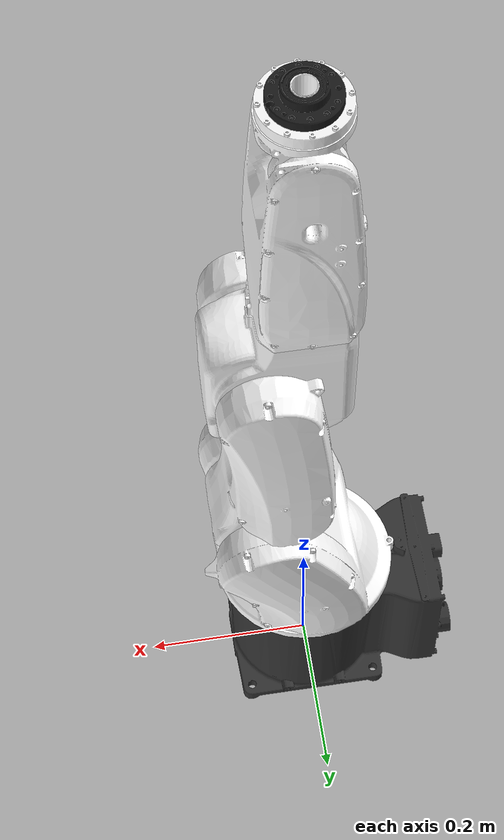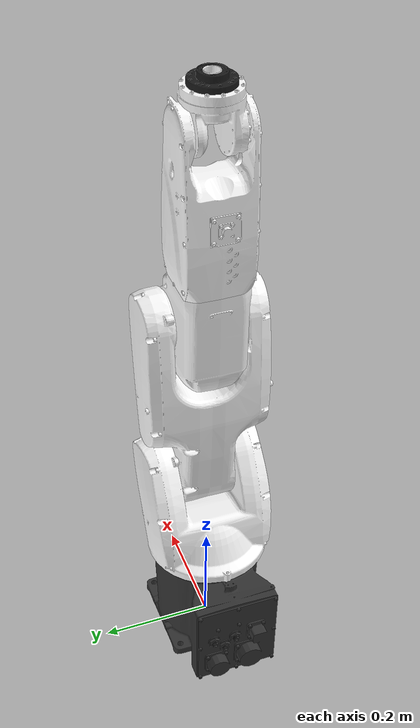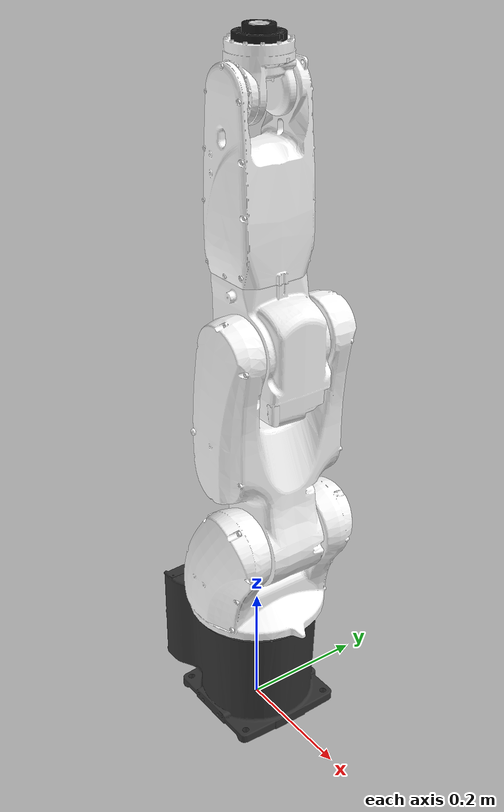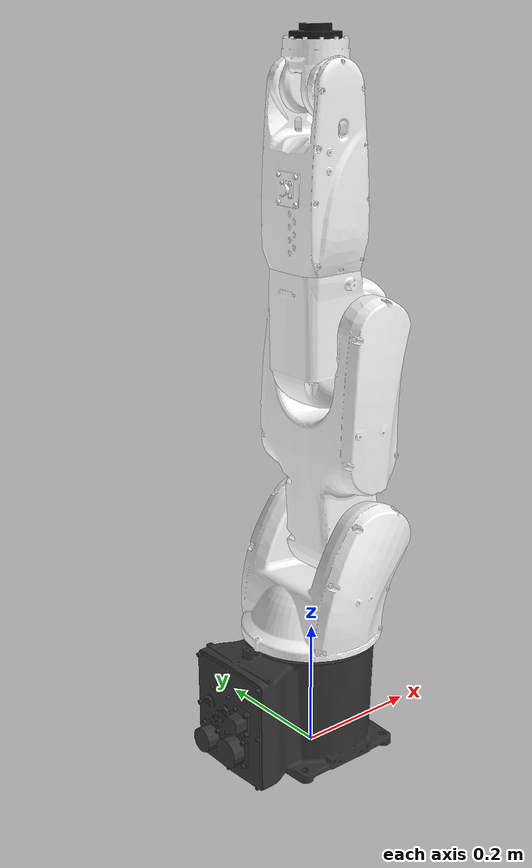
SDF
<?xml version="1.0" ?>
<sdf version='1.6'>
  <world name='default'>
  <model name='mz07'>
    <link name='mz07_link_0'>
      <pose frame=''>0 0 0 0 0 0</pose>
      <inertial>
        <pose frame=''>-0.1 0 0.07 0 -0 0</pose>
        <mass>0</mass>
        <inertia>
          <ixx>0.05</ixx>
          <ixy>0</ixy>
          <ixz>0</ixz>
          <iyy>0.06</iyy>
          <iyz>0</iyz>
          <izz>0.03</izz>
        </inertia>
      </inertial>
      <collision name='mz07_link_0_collision'>
        <pose frame=''>0 0 0 0 0 0</pose>
        <geometry>
          <mesh>
            <scale>1 1 1</scale>
            <uri>stls/mz07/mz07_base.stl</uri>
          </mesh>
        </geometry>
      </collision>
      <visual name='mz07_link_0_visual'>
        <pose frame=''>0 0 0 0 0 0</pose>
        <geometry>
          <mesh>
            <scale>1 1 1</scale>
            <uri>stls/mz07/mz07_base.stl</uri>
          </mesh>
        </geometry>
        <material>
          <ambient>1 0 0 1</ambient>
          <diffuse>0.2 0.2 0.2 1.0</diffuse>
          <specular>0.4 0.4 0.4 1</specular>
          <emissive>0 0 0 0</emissive>
        </material>
      </visual>
    </link>
    <link name='mz07_link_1'>
      <pose frame=''>0 0 0.197 0 0 0</pose>
      <inertial>
        <pose frame=''>0 -0.03 0.12 0 -0 0</pose>
        <mass>4</mass>
        <inertia>
          <ixx>0.1</ixx>
          <ixy>0</ixy>
          <ixz>0</ixz>
          <iyy>0.09</iyy>
          <iyz>0</iyz>
          <izz>0.02</izz>
        </inertia>
      </inertial>
      <collision name='mz07_link_1_collision'>
        <pose frame=''>0 0 0 0 0 0</pose>
        <geometry>
          <mesh>
            <scale>1 1 1</scale>
            <uri>stls/mz07/mz07_link1.stl</uri>
          </mesh>
        </geometry>
      </collision>
      <visual name='mz07_link_1_visual'>
        <pose frame=''>0 0 0 0 0 0</pose>
        <geometry>
          <mesh>
            <scale>1 1 1</scale>
            <uri>stls/mz07/mz07_link1.stl</uri>
          </mesh>
        </geometry>
        <material>
          <ambient>1 0 0 1</ambient>
          <diffuse>1.0 1.0 1.0 1.0</diffuse>
          <specular>0.5 0.5 0.5 1</specular>
          <emissive>0 0 0 0</emissive>
        </material>
      </visual>
    </link>
    <joint name='J0' type='revolute'>
      <child>mz07_link_1</child>
      <parent>mz07_link_0</parent>
      <axis>
        <xyz>0 0 1</xyz>
        <limit>
          <lower>-2.96705981</lower>
          <upper>2.96705981</upper>
          <effort>300</effort>
          <velocity>10</velocity>
        </limit>
        <dynamics>
          <damping>0.5</damping>
          <friction>0</friction>
          <spring_reference>0</spring_reference>
          <spring_stiffness>0</spring_stiffness>
        </dynamics>
      </axis>
    </joint>
    <link name='mz07_link_2'>
      <pose frame=''>0.05 0 0.345 0 0 0</pose>
      <inertial>
        <pose frame=''>0.0003 0.059 0.042 0 -0 0</pose>
        <mass>4</mass>
        <inertia>
          <ixx>0.05</ixx>
          <ixy>0</ixy>
          <ixz>0</ixz>
          <iyy>0.018</iyy>
          <iyz>0</iyz>
          <izz>0.044</izz>
        </inertia>
      </inertial>
      <collision name='mz07_link_2_collision'>
        <pose frame=''>0 0 0 0 0 0</pose>
        <geometry>
          <mesh>
            <scale>1 1 1</scale>
            <uri>stls/mz07/mz07_link2.stl</uri>
          </mesh>
        </geometry>
      </collision>
      <visual name='mz07_link_2_visual'>
        <pose frame=''>0 0 0 0 0 0</pose>
        <geometry>
          <mesh>
            <scale>1 1 1</scale>
            <uri>stls/mz07/mz07_link2.stl</uri>
          </mesh>
        </geometry>
        <material>
          <ambient>1 0 0 1</ambient>
          <diffuse>1.0 1.0 1.0 1.0</diffuse>
          <specular>0.5 0.5 0.5 1</specular>
          <emissive>0 0 0 0</emissive>
        </material>
      </visual>
    </link>
    <joint name='J1' type='revolute'>
      <child>mz07_link_2</child>
      <parent>mz07_link_1</parent>
      <axis>
        <xyz>0 1 0</xyz>
        <limit>
          <lower>-1.39626344</lower>
          <upper>2.356194555</upper>
          <effort>300</effort>
          <velocity>10</velocity>
        </limit>
        <dynamics>
          <damping>0.5</damping>
          <friction>0</friction>
          <spring_reference>0</spring_reference>
          <spring_stiffness>0</spring_stiffness>
        </dynamics>
      </axis>
    </joint>
    <link name='mz07_link_3'>
      <pose frame=''>0.05 0 0.675 0 0 0</pose>
      <inertial>
        <pose frame=''>0 0.03 0.13 0 -0 0</pose>
        <mass>3</mass>
        <inertia>
          <ixx>0.08</ixx>
          <ixy>0</ixy>
          <ixz>0</ixz>
          <iyy>0.075</iyy>
          <iyz>0</iyz>
          <izz>0.01</izz>
        </inertia>
      </inertial>
      <collision name='mz07_link_3_collision'>
        <pose frame=''>0 0 0 0 -1.57 0</pose>
        <geometry>
          <mesh>
            <scale>1 1 1</scale>
            <uri>stls/mz07/mz07_link3.stl</uri>
          </mesh>
        </geometry>
      </collision>
      <visual name='mz07_link_3_visual'>
        <pose frame=''>0 0 0 0 -1.57 0</pose>
        <geometry>
          <mesh>
            <scale>1 1 1</scale>
            <uri>stls/mz07/mz07_link3.stl</uri>
          </mesh>
        </geometry>
        <material>
          <ambient>1 0 0 1</ambient>
          <diffuse>1.0 1.0 1.0 1.0</diffuse>
          <specular>0.5 0.5 0.5 1</specular>
          <emissive>0 0 0 0</emissive>
        </material>
      </visual>
    </link>
    <joint name='J2' type='revolute'>
      <child>mz07_link_3</child>
      <parent>mz07_link_2</parent>
      <axis>
        <xyz>0 1 0</xyz>
        <limit>
          <lower>-1.57159274</lower>
          <upper>2.372851478</upper>
          <effort>300</effort>
          <velocity>10</velocity>
        </limit>
        <dynamics>
          <damping>0.5</damping>
          <friction>0</friction>
          <spring_reference>0</spring_reference>
          <spring_stiffness>0</spring_stiffness>
        </dynamics>
      </axis>
    </joint>
    <link name='mz07_link_4'>
      <pose frame=''>0.005 0 0.765 0 0 0</pose>
      <inertial>
        <pose frame=''>0 0.067 0.034 0 -0 0</pose>
        <mass>2.7</mass>
        <inertia>
          <ixx>0.03</ixx>
          <ixy>0</ixy>
          <ixz>0</ixz>
          <iyy>0.01</iyy>
          <iyz>0</iyz>
          <izz>0.029</izz>
        </inertia>
      </inertial>
      <collision name='mz07_link_4_collision'>
        <pose frame=''>0 0 0 0 -1.57 0</pose>
        <geometry>
          <mesh>
            <scale>1 1 1</scale>
            <uri>stls/mz07/mz07_link4.stl</uri>
          </mesh>
        </geometry>
      </collision>
      <visual name='mz07_link_4_visual'>
        <pose frame=''>0 0 0 0 -1.57 0</pose>
        <geometry>
          <mesh>
            <scale>1 1 1</scale>
            <uri>stls/mz07/mz07_link4.stl</uri>
          </mesh>
        </geometry>
        <material>
          <ambient>1 0 0 1</ambient>
          <diffuse>1.0 1.0 1.0 1.0</diffuse>
          <specular>0.5 0.5 0.5 1</specular>
          <emissive>0 0 0 0</emissive>
        </material>
      </visual>
    </link>
    <joint name='J3' type='revolute'>
      <child>mz07_link_4</child>
      <parent>mz07_link_3</parent>
      <axis>
        <xyz>0 0 1</xyz>
        <limit>
          <lower>-3.31612567</lower>
          <upper>3.31612567</upper>
          <effort>300</effort>
          <velocity>10</velocity>
        </limit>
        <dynamics>
          <damping>0.5</damping>
          <friction>0</friction>
          <spring_reference>0</spring_reference>
          <spring_stiffness>0</spring_stiffness>
        </dynamics>
      </axis>
    </joint>
    <link name='mz07_link_5'>
      <pose frame=''>0.005 0 1.015 0 0 0</pose>
      <inertial>
        <pose frame=''>0.0001 0.021 0.076 0 -0 0</pose>
        <mass>1.7</mass>
        <inertia>
          <ixx>0.02</ixx>
          <ixy>0</ixy>
          <ixz>0</ixz>
          <iyy>0.018</iyy>
          <iyz>0</iyz>
          <izz>0.005</izz>
        </inertia>
      </inertial>
      <collision name='mz07_link_5_collision'>
        <pose frame=''>0 0 0 0 -1.57 0</pose>
        <geometry>
          <mesh>
            <scale>1 1 1</scale>
            <uri>stls/mz07/mz07_link5.stl</uri>
          </mesh>
        </geometry>
      </collision>
      <visual name='mz07_link_5_visual'>
        <pose frame=''>0 0 0 0 -1.57 0</pose>
        <geometry>
          <mesh>
            <scale>1 1 1</scale>
            <uri>stls/mz07/mz07_link5.stl</uri>
          </mesh>
        </geometry>
        <material>
          <ambient>1 0 0 1</ambient>
          <diffuse>1.0 1.0 1.0 1.0</diffuse>
          <specular>0.5 0.5 0.5 1</specular>
          <emissive>0 0 0 0</emissive>
        </material>
      </visual>
    </link>
    <joint name='J4' type='revolute'>
      <child>mz07_link_5</child>
      <parent>mz07_link_4</parent>
      <axis>
        <xyz>0 1 0</xyz>
        <limit>
          <lower>-2.09439516</lower>
          <upper>2.09439516</upper>
          <effort>300</effort>
          <velocity>10</velocity>
        </limit>
        <dynamics>
          <damping>0.5</damping>
          <friction>0</friction>
          <spring_reference>0</spring_reference>
          <spring_stiffness>0</spring_stiffness>
        </dynamics>
      </axis>
    </joint>
    <link name='mz07_link_6'>
      <pose frame=''>0.005 0 1.078 0 0 0</pose>
      <inertial>
        <pose frame=''>0 0.0006 0.0004 0 -0 0</pose>
        <mass>1.8</mass>
        <inertia>
          <ixx>0.005</ixx>
          <ixy>0</ixy>
          <ixz>0</ixz>
          <iyy>0.0036</iyy>
          <iyz>0</iyz>
          <izz>0.0047</izz>
        </inertia>
      </inertial>
      <collision name='mz07_link_6_collision'>
        <pose frame=''>0 0 0 0 -1.57 0</pose>
        <geometry>
          <mesh>
            <scale>1 1 1</scale>
            <uri>stls/mz07/mz07_link6.stl</uri>
          </mesh>
        </geometry>
      </collision>
      <visual name='mz07_link_6_visual'>
        <pose frame=''>0 0 0 0 -1.57 0</pose>
        <geometry>
          <mesh>
            <scale>1 1 1</scale>
            <uri>stls/mz07/mz07_link6.stl</uri>
          </mesh>
        </geometry>
        <material>
          <ambient>1 0 0 1</ambient>
          <diffuse>0.1 0.1 0.1 1.0</diffuse>
          <specular>0.5 0.5 0.5 1</specular>
          <emissive>0 0 0 0</emissive>
        </material>
      </visual>
    </link>
    <joint name='J5' type='revolute'>
      <child>mz07_link_6</child>
      <parent>mz07_link_5</parent>
      <axis>
        <xyz>0 0 1</xyz>
        <limit>
          <lower>-6.28318548</lower>
          <upper>6.28318548</upper>
          <effort>300</effort>
          <velocity>10</velocity>
        </limit>
        <dynamics>
          <damping>0.5</damping>
          <friction>0</friction>
          <spring_reference>0</spring_reference>
          <spring_stiffness>0</spring_stiffness>
        </dynamics>
      </axis>
    </joint>
  </model>
</world>
</sdf>
